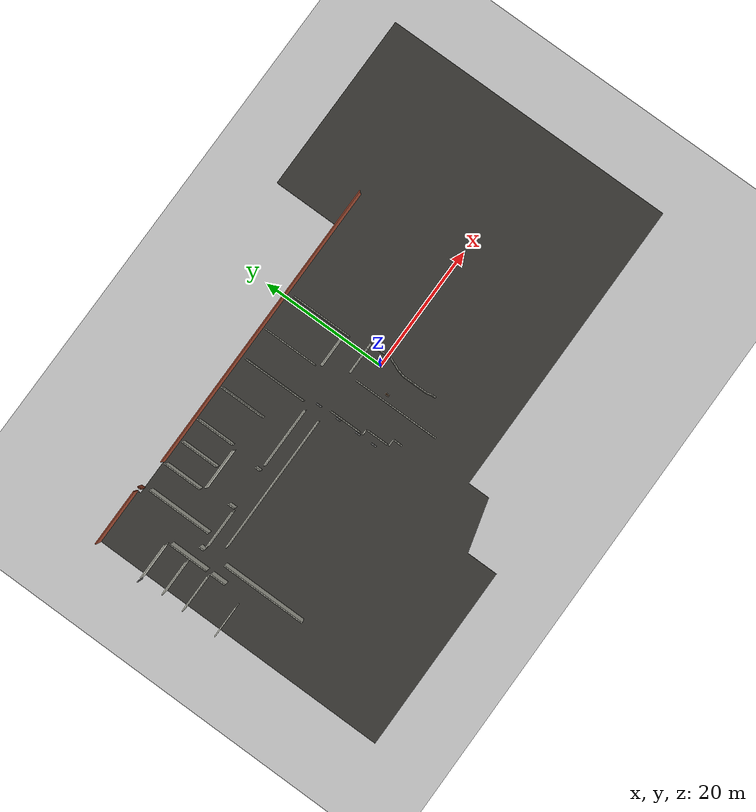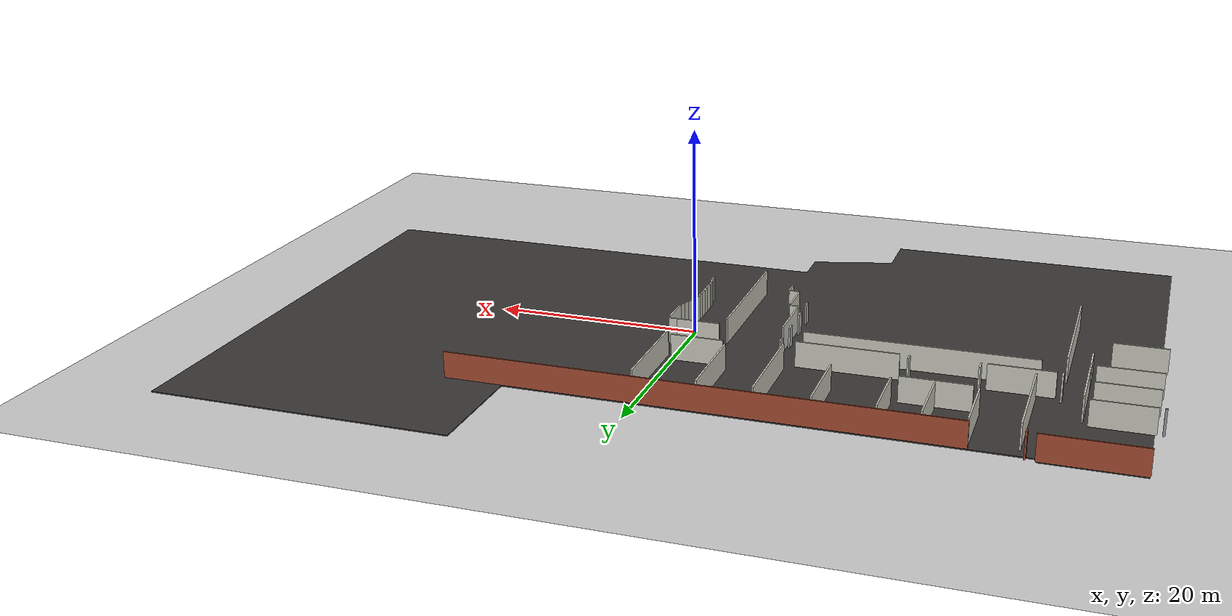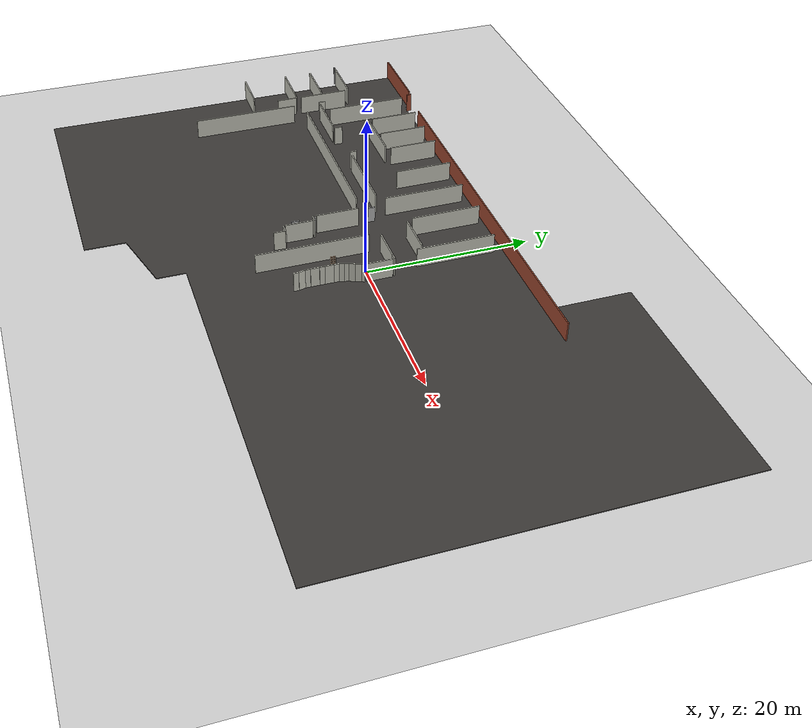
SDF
<sdf version="1.7">
 <world name="default">
  <model name="ground_plane">
   <static>1</static>
   <link name="link">
    <collision name="collision">
     <geometry><plane><normal>0 0 1</normal><size>100 100</size></plane></geometry>
     <surface><friction><ode><mu>100</mu><mu2>50</mu2></ode></friction></surface>
    </collision>
    <visual name="visual">
     <cast_shadows>0</cast_shadows>
     <geometry><plane><normal>0 0 1</normal><size>100 100</size></plane></geometry>
     <material>
      <ambient>1 1 1 1</ambient>
      <diffuse>0.8 0.8 0.8 1</diffuse>
      <specular>0.01 0.01 0.01 1</specular>
     </material>
    </visual>
   </link>
  </model>
  <model name="floorPlan">
   <pose>6.7155 -5.3556 0 0 -0 0</pose>
   <link name="Wall_101">
    <collision name="Wall_101_Collision">
     <geometry><box><size>8.95 0.15 2.5</size></box></geometry>
     <pose>0 0 1.25 0 -0 0</pose>
    </collision>
    <visual name="Wall_101_Visual">
     <pose>0 0 1.25 0 -0 0</pose>
     <geometry><box><size>8.95 0.15 2.5</size></box></geometry>
     <material>
      <script><uri>file://media/materials/scripts/gazebo.material</uri><name>Gazebo/Bricks</name></script>
      <ambient>1 1 1 1</ambient>
     </material>
     <meta><layer>0</layer></meta>
    </visual>
    <pose>-45.3755 22.7356 0 0 -0 0</pose>
   </link>
   <link name="Wall_102">
    <collision name="Wall_102_Collision">
     <geometry><box><size>0.62 0.15 2.5</size></box></geometry>
     <pose>0 0 1.25 0 -0 0</pose>
    </collision>
    <visual name="Wall_102_Visual">
     <pose>0 0 1.25 0 -0 0</pose>
     <geometry><box><size>0.62 0.15 2.5</size></box></geometry>
     <material>
      <script><uri>file://media/materials/scripts/gazebo.material</uri><name>Gazebo/Bricks</name></script>
      <ambient>1 1 1 1</ambient>
     </material>
     <meta><layer>0</layer></meta>
    </visual>
    <pose>-40.0755 22.4356 0 0 0 -1.5708</pose>
   </link>
   <link name="Wall_103">
    <collision name="Wall_103_Collision">
     <geometry><box><size>46.86 0.15 2.5</size></box></geometry>
     <pose>0 0 1.25 0 -0 0</pose>
    </collision>
    <visual name="Wall_103_Visual">
     <pose>0 0 1.25 0 -0 0</pose>
     <geometry><box><size>46.86 0.15 2.5</size></box></geometry>
     <material>
      <script><uri>file://media/materials/scripts/gazebo.material</uri><name>Gazebo/Bricks</name></script>
      <ambient>1 1 1 1</ambient>
     </material>
     <meta><layer>0</layer></meta>
    </visual>
    <pose>-12.0255 22.1356 0 0 -0 0</pose>
   </link>
   <link name="Wall_161">
    <collision name="Wall_161_Collision">
     <geometry><box><size>4.17 0.15 2.5</size></box></geometry>
     <pose>0 0 1.25 0 -0 0</pose>
    </collision>
    <visual name="Wall_161_Visual">
     <pose>0 0 1.25 0 -0 0</pose>
     <geometry><box><size>4.17 0.15 2.5</size></box></geometry>
     <material>
      <script><uri>file://media/materials/scripts/gazebo.material</uri><name>Gazebo/PaintedWall</name></script>
      <ambient>1 1 1 1</ambient>
     </material>
     <meta><layer>0</layer></meta>
    </visual>
    <pose>-7.97942 8.30014 0 0 -0 3.14159</pose>
   </link>
   <link name="Wall_162">
    <collision name="Wall_162_Collision">
     <geometry><box><size>13.74 0.15 2.5</size></box></geometry>
     <pose>0 0 1.25 0 -0 0</pose>
    </collision>
    <visual name="Wall_162_Visual">
     <pose>0 0 1.25 0 -0 0</pose>
     <geometry><box><size>13.74 0.15 2.5</size></box></geometry>
     <material>
      <script><uri>file://media/materials/scripts/gazebo.material</uri><name>Gazebo/PaintedWall</name></script>
      <ambient>1 1 1 1</ambient>
     </material>
     <meta><layer>0</layer></meta>
    </visual>
    <pose>-10.4044 0.125141 0 0 0 -1.5708</pose>
   </link>
   <link name="Wall_167">
    <collision name="Wall_167_Collision">
     <geometry><box><size>0.62 0.15 2.5</size></box></geometry>
     <pose>0 0 1.25 0 -0 0</pose>
    </collision>
    <visual name="Wall_167_Visual">
     <pose>0 0 1.25 0 -0 0</pose>
     <geometry><box><size>0.62 0.15 2.5</size></box></geometry>
     <material>
      <script><uri>file://media/materials/scripts/gazebo.material</uri><name>Gazebo/PaintedWall</name></script>
      <ambient>1 1 1 1</ambient>
     </material>
     <meta><layer>0</layer></meta>
    </visual>
    <pose>-5.82 -3.14265 0 0 -0 1.5708</pose>
   </link>
   <link name="Wall_168">
    <collision name="Wall_168_Collision">
     <geometry><box><size>0.83 0.15 2.5</size></box></geometry>
     <pose>0 0 1.25 0 -0 0</pose>
    </collision>
    <visual name="Wall_168_Visual">
     <pose>0 0 1.25 0 -0 0</pose>
     <geometry><box><size>0.83 0.15 2.5</size></box></geometry>
     <material>
      <script><uri>file://media/materials/scripts/gazebo.material</uri><name>Gazebo/PaintedWall</name></script>
      <ambient>1 1 1 1</ambient>
     </material>
     <meta><layer>0</layer></meta>
    </visual>
    <pose>-5.93 -2.43213 0 0 -0 1.8326</pose>
   </link>
   <link name="Wall_169">
    <collision name="Wall_169_Collision">
     <geometry><box><size>0.62 0.15 2.5</size></box></geometry>
     <pose>0 0 1.25 0 -0 0</pose>
    </collision>
    <visual name="Wall_169_Visual">
     <pose>0 0 1.25 0 -0 0</pose>
     <geometry><box><size>0.62 0.15 2.5</size></box></geometry>
     <material>
      <script><uri>file://media/materials/scripts/gazebo.material</uri><name>Gazebo/PaintedWall</name></script>
      <ambient>1 1 1 1</ambient>
     </material>
     <meta><layer>0</layer></meta>
    </visual>
    <pose>-6.04 -1.72161 0 0 -0 1.5708</pose>
   </link>
   <link name="Wall_170">
    <collision name="Wall_170_Collision">
     <geometry><box><size>1.04 0.15 2.5</size></box></geometry>
     <pose>0 0 1.25 0 -0 0</pose>
    </collision>
    <visual name="Wall_170_Visual">
     <pose>0 0 1.25 0 -0 0</pose>
     <geometry><box><size>1.04 0.15 2.5</size></box></geometry>
     <material>
      <script><uri>file://media/materials/scripts/gazebo.material</uri><name>Gazebo/PaintedWall</name></script>
      <ambient>1 1 1 1</ambient>
     </material>
     <meta><layer>0</layer></meta>
    </visual>
    <pose>-6.04 -0.871614 0 0 -0 1.5708</pose>
   </link>
   <link name="Wall_171">
    <collision name="Wall_171_Collision">
     <geometry><box><size>0.62 0.15 2.5</size></box></geometry>
     <pose>0 0 1.25 0 -0 0</pose>
    </collision>
    <visual name="Wall_171_Visual">
     <pose>0 0 1.25 0 -0 0</pose>
     <geometry><box><size>0.62 0.15 2.5</size></box></geometry>
     <material>
      <script><uri>file://media/materials/scripts/gazebo.material</uri><name>Gazebo/PaintedWall</name></script>
      <ambient>1 1 1 1</ambient>
     </material>
     <meta><layer>0</layer></meta>
    </visual>
    <pose>-6.04 -0.021614 0 0 -0 1.5708</pose>
   </link>
   <link name="Wall_172">
    <collision name="Wall_172_Collision">
     <geometry><box><size>1.04 0.15 2.5</size></box></geometry>
     <pose>0 0 1.25 0 -0 0</pose>
    </collision>
    <visual name="Wall_172_Visual">
     <pose>0 0 1.25 0 -0 0</pose>
     <geometry><box><size>1.04 0.15 2.5</size></box></geometry>
     <material>
      <script><uri>file://media/materials/scripts/gazebo.material</uri><name>Gazebo/PaintedWall</name></script>
      <ambient>1 1 1 1</ambient>
     </material>
     <meta><layer>0</layer></meta>
    </visual>
    <pose>-6.04 0.828386 0 0 -0 1.5708</pose>
   </link>
   <link name="Wall_173">
    <collision name="Wall_173_Collision">
     <geometry><box><size>0.62 0.15 2.5</size></box></geometry>
     <pose>0 0 1.25 0 -0 0</pose>
    </collision>
    <visual name="Wall_173_Visual">
     <pose>0 0 1.25 0 -0 0</pose>
     <geometry><box><size>0.62 0.15 2.5</size></box></geometry>
     <material>
      <script><uri>file://media/materials/scripts/gazebo.material</uri><name>Gazebo/PaintedWall</name></script>
      <ambient>1 1 1 1</ambient>
     </material>
     <meta><layer>0</layer></meta>
    </visual>
    <pose>-6.04 1.67839 0 0 -0 1.5708</pose>
   </link>
   <link name="Wall_174">
    <collision name="Wall_174_Collision">
     <geometry><box><size>0.62 0.15 2.5</size></box></geometry>
     <pose>0 0 1.25 0 -0 0</pose>
    </collision>
    <visual name="Wall_174_Visual">
     <pose>0 0 1.25 0 -0 0</pose>
     <geometry><box><size>0.62 0.15 2.5</size></box></geometry>
     <material>
      <script><uri>file://media/materials/scripts/gazebo.material</uri><name>Gazebo/PaintedWall</name></script>
      <ambient>1 1 1 1</ambient>
     </material>
     <meta><layer>0</layer></meta>
    </visual>
    <pose>-5.96235 2.26816 0 0 -0 1.309</pose>
   </link>
   <link name="Wall_175">
    <collision name="Wall_175_Collision">
     <geometry><box><size>0.57 0.15 2.5</size></box></geometry>
     <pose>0 0 1.25 0 -0 0</pose>
    </collision>
    <visual name="Wall_175_Visual">
     <pose>0 0 1.25 0 -0 0</pose>
     <geometry><box><size>0.57 0.15 2.5</size></box></geometry>
     <material>
      <script><uri>file://media/materials/scripts/gazebo.material</uri><name>Gazebo/PaintedWall</name></script>
      <ambient>1 1 1 1</ambient>
     </material>
     <meta><layer>0</layer></meta>
    </visual>
    <pose>-5.82391 2.82035 0 0 -0 1.34312</pose>
   </link>
   <link name="Wall_176">
    <collision name="Wall_176_Collision">
     <geometry><box><size>0.73 0.15 2.5</size></box></geometry>
     <pose>0 0 1.25 0 -0 0</pose>
    </collision>
    <visual name="Wall_176_Visual">
     <pose>0 0 1.25 0 -0 0</pose>
     <geometry><box><size>0.73 0.15 2.5</size></box></geometry>
     <material>
      <script><uri>file://media/materials/scripts/gazebo.material</uri><name>Gazebo/PaintedWall</name></script>
      <ambient>1 1 1 1</ambient>
     </material>
     <meta><layer>0</layer></meta>
    </visual>
    <pose>-5.60659 3.41318 0 0 -0 1.12842</pose>
   </link>
   <link name="Wall_177">
    <collision name="Wall_177_Collision">
     <geometry><box><size>0.7 0.15 2.5</size></box></geometry>
     <pose>0 0 1.25 0 -0 0</pose>
    </collision>
    <visual name="Wall_177_Visual">
     <pose>0 0 1.25 0 -0 0</pose>
     <geometry><box><size>0.7 0.15 2.5</size></box></geometry>
     <material>
      <script><uri>file://media/materials/scripts/gazebo.material</uri><name>Gazebo/PaintedWall</name></script>
      <ambient>1 1 1 1</ambient>
     </material>
     <meta><layer>0</layer></meta>
    </visual>
    <pose>-5.34572 4.07405 0 0 -0 1.26492</pose>
   </link>
   <link name="Wall_178">
    <collision name="Wall_178_Collision">
     <geometry><box><size>0.42 0.15 2.5</size></box></geometry>
     <pose>0 0 1.25 0 -0 0</pose>
    </collision>
    <visual name="Wall_178_Visual">
     <pose>0 0 1.25 0 -0 0</pose>
     <geometry><box><size>0.42 0.15 2.5</size></box></geometry>
     <material>
      <script><uri>file://media/materials/scripts/gazebo.material</uri><name>Gazebo/PaintedWall</name></script>
      <ambient>1 1 1 1</ambient>
     </material>
     <meta><layer>0</layer></meta>
    </visual>
    <pose>-5.15387 4.55604 0 0 -0 1.0472</pose>
   </link>
   <link name="Wall_179">
    <collision name="Wall_179_Collision">
     <geometry><box><size>3.12 0.15 2.5</size></box></geometry>
     <pose>0 0 1.25 0 -0 0</pose>
    </collision>
    <visual name="Wall_179_Visual">
     <pose>0 0 1.25 0 -0 0</pose>
     <geometry><box><size>3.12 0.15 2.5</size></box></geometry>
     <material>
      <script><uri>file://media/materials/scripts/gazebo.material</uri><name>Gazebo/PaintedWall</name></script>
      <ambient>1 1 1 1</ambient>
     </material>
     <meta><layer>0</layer></meta>
    </visual>
    <pose>-5.06637 6.5076 0 0 -0 1.5708</pose>
   </link>
   <link name="Wall_180">
    <collision name="Wall_180_Collision">
     <geometry><box><size>0.83 0.15 2.5</size></box></geometry>
     <pose>0 0 1.25 0 -0 0</pose>
    </collision>
    <visual name="Wall_180_Visual">
     <pose>0 0 1.25 0 -0 0</pose>
     <geometry><box><size>0.83 0.15 2.5</size></box></geometry>
     <material>
      <script><uri>file://media/materials/scripts/gazebo.material</uri><name>Gazebo/PaintedWall</name></script>
      <ambient>1 1 1 1</ambient>
     </material>
     <meta><layer>0</layer></meta>
    </visual>
    <pose>-5.49137 8.3076 0 0 -0 3.14159</pose>
   </link>
   <link name="Wall_184">
    <collision name="Wall_184_Collision">
     <geometry><box><size>13.33 0.15 2.5</size></box></geometry>
     <pose>0 0 1.25 0 -0 0</pose>
    </collision>
    <visual name="Wall_184_Visual">
     <pose>0 0 1.25 0 -0 0</pose>
     <geometry><box><size>13.33 0.15 2.5</size></box></geometry>
     <material>
      <script><uri>file://media/materials/scripts/gazebo.material</uri><name>Gazebo/PaintedWall</name></script>
      <ambient>1 1 1 1</ambient>
     </material>
     <meta><layer>0</layer></meta>
    </visual>
    <pose>-41.7957 -0.087903 0 0 -0 1.5708</pose>
   </link>
   <link name="Wall_185">
    <collision name="Wall_185_Collision">
     <geometry><box><size>21.66 0.15 2.5</size></box></geometry>
     <pose>0 0 1.25 0 -0 0</pose>
    </collision>
    <visual name="Wall_185_Visual">
     <pose>0 0 1.25 0 -0 0</pose>
     <geometry><box><size>21.66 0.15 2.5</size></box></geometry>
     <material>
      <script><uri>file://media/materials/scripts/gazebo.material</uri><name>Gazebo/PaintedWall</name></script>
      <ambient>1 1 1 1</ambient>
     </material>
     <meta><layer>0</layer></meta>
    </visual>
    <pose>-28.8707 7.8371 0 0 -0 0</pose>
   </link>
   <link name="Wall_186">
    <collision name="Wall_186_Collision">
     <geometry><box><size>5.21 0.15 2.5</size></box></geometry>
     <pose>0 0 1.25 0 -0 0</pose>
    </collision>
    <visual name="Wall_186_Visual">
     <pose>0 0 1.25 0 -0 0</pose>
     <geometry><box><size>5.21 0.15 2.5</size></box></geometry>
     <material>
      <script><uri>file://media/materials/scripts/gazebo.material</uri><name>Gazebo/PaintedWall</name></script>
      <ambient>1 1 1 1</ambient>
     </material>
     <meta><layer>0</layer></meta>
    </visual>
    <pose>-15.9457 4.7871 0 0 0 -1.5708</pose>
   </link>
   <link name="Wall_187">
    <collision name="Wall_187_Collision">
     <geometry><box><size>0.83 0.15 2.5</size></box></geometry>
     <pose>0 0 1.25 0 -0 0</pose>
    </collision>
    <visual name="Wall_187_Visual">
     <pose>0 0 1.25 0 -0 0</pose>
     <geometry><box><size>0.83 0.15 2.5</size></box></geometry>
     <material>
      <script><uri>file://media/materials/scripts/gazebo.material</uri><name>Gazebo/PaintedWall</name></script>
      <ambient>1 1 1 1</ambient>
     </material>
     <meta><layer>0</layer></meta>
    </visual>
    <pose>-15.5207 1.7371 0 0 -0 0</pose>
   </link>
   <link name="Wall_188">
    <collision name="Wall_188_Collision">
     <geometry><box><size>3.33 0.15 2.5</size></box></geometry>
     <pose>0 0 1.25 0 -0 0</pose>
    </collision>
    <visual name="Wall_188_Visual">
     <pose>0 0 1.25 0 -0 0</pose>
     <geometry><box><size>3.33 0.15 2.5</size></box></geometry>
     <material>
      <script><uri>file://media/materials/scripts/gazebo.material</uri><name>Gazebo/PaintedWall</name></script>
      <ambient>1 1 1 1</ambient>
     </material>
     <meta><layer>0</layer></meta>
    </visual>
    <pose>-15.0957 -0.187903 0 0 0 -1.5708</pose>
   </link>
   <link name="Wall_189">
    <collision name="Wall_189_Collision">
     <geometry><box><size>1.04 0.15 2.5</size></box></geometry>
     <pose>0 0 1.25 0 -0 0</pose>
    </collision>
    <visual name="Wall_189_Visual">
     <pose>0 0 1.25 0 -0 0</pose>
     <geometry><box><size>1.04 0.15 2.5</size></box></geometry>
     <material>
      <script><uri>file://media/materials/scripts/gazebo.material</uri><name>Gazebo/PaintedWall</name></script>
      <ambient>1 1 1 1</ambient>
     </material>
     <meta><layer>0</layer></meta>
    </visual>
    <pose>-14.5457 -2.1129 0 0 -0 0</pose>
   </link>
   <link name="Wall_190">
    <collision name="Wall_190_Collision">
     <geometry><box><size>1.39 0.15 2.5</size></box></geometry>
     <pose>0 0 1.25 0 -0 0</pose>
    </collision>
    <visual name="Wall_190_Visual">
     <pose>0 0 1.25 0 -0 0</pose>
     <geometry><box><size>1.39 0.15 2.5</size></box></geometry>
     <material>
      <script><uri>file://media/materials/scripts/gazebo.material</uri><name>Gazebo/PaintedWall</name></script>
      <ambient>1 1 1 1</ambient>
     </material>
     <meta><layer>0</layer></meta>
    </visual>
    <pose>-14.0185 -2.8716 0 0 0 -1.60087</pose>
   </link>
   <link name="Wall_198">
    <collision name="Wall_198_Collision">
     <geometry><box><size>5 0.15 2.5</size></box></geometry>
     <pose>0 0 1.25 0 -0 0</pose>
    </collision>
    <visual name="Wall_198_Visual">
     <pose>0 0 1.25 0 -0 0</pose>
     <geometry><box><size>5 0.15 2.5</size></box></geometry>
     <material>
      <script><uri>file://media/materials/scripts/gazebo.material</uri><name>Gazebo/PaintedWall</name></script>
      <ambient>1 1 1 1</ambient>
     </material>
     <meta><layer>0</layer></meta>
    </visual>
    <pose>-47.8468 1.90014 0 0 -0 0</pose>
   </link>
   <link name="Wall_200">
    <collision name="Wall_200_Collision">
     <geometry><box><size>2.5 0.15 2.5</size></box></geometry>
     <pose>0 0 1.25 0 -0 0</pose>
    </collision>
    <visual name="Wall_200_Visual">
     <pose>0 0 1.25 0 -0 0</pose>
     <geometry><box><size>2.5 0.15 2.5</size></box></geometry>
     <material>
      <script><uri>file://media/materials/scripts/gazebo.material</uri><name>Gazebo/PaintedWall</name></script>
      <ambient>1 1 1 1</ambient>
     </material>
     <meta><layer>0</layer></meta>
    </visual>
    <pose>-43.8501 6.14253 0 0 -0 1.5708</pose>
   </link>
   <link name="Wall_201">
    <collision name="Wall_201_Collision">
     <geometry><box><size>5.83 0.15 2.5</size></box></geometry>
     <pose>0 0 1.25 0 -0 0</pose>
    </collision>
    <visual name="Wall_201_Visual">
     <pose>0 0 1.25 0 -0 0</pose>
     <geometry><box><size>5.83 0.15 2.5</size></box></geometry>
     <material>
      <script><uri>file://media/materials/scripts/gazebo.material</uri><name>Gazebo/PaintedWall</name></script>
      <ambient>1 1 1 1</ambient>
     </material>
     <meta><layer>0</layer></meta>
    </visual>
    <pose>-47.2751 7.56753 0 0 -0 3.14159</pose>
   </link>
   <link name="Wall_204">
    <collision name="Wall_204_Collision">
     <geometry><box><size>6.25 0.15 2.5</size></box></geometry>
     <pose>0 0 1.25 0 -0 0</pose>
    </collision>
    <visual name="Wall_204_Visual">
     <pose>0 0 1.25 0 -0 0</pose>
     <geometry><box><size>6.25 0.15 2.5</size></box></geometry>
     <material>
      <script><uri>file://media/materials/scripts/gazebo.material</uri><name>Gazebo/PaintedWall</name></script>
      <ambient>1 1 1 1</ambient>
     </material>
     <meta><layer>0</layer></meta>
    </visual>
    <pose>-43.8501 11.2425 0 0 -0 1.5708</pose>
   </link>
   <link name="Wall_205">
    <collision name="Wall_205_Collision">
     <geometry><box><size>5.62 0.15 2.5</size></box></geometry>
     <pose>0 0 1.25 0 -0 0</pose>
    </collision>
    <visual name="Wall_205_Visual">
     <pose>0 0 1.25 0 -0 0</pose>
     <geometry><box><size>5.62 0.15 2.5</size></box></geometry>
     <material>
      <script><uri>file://media/materials/scripts/gazebo.material</uri><name>Gazebo/PaintedWall</name></script>
      <ambient>1 1 1 1</ambient>
     </material>
     <meta><layer>0</layer></meta>
    </visual>
    <pose>-47.1501 14.9175 0 0 -0 3.14159</pose>
   </link>
   <link name="Wall_207">
    <collision name="Wall_207_Collision">
     <geometry><box><size>0.21 0.15 2.5</size></box></geometry>
     <pose>0 0 1.25 0 -0 0</pose>
    </collision>
    <visual name="Wall_207_Visual">
     <pose>0 0 1.25 0 -0 0</pose>
     <geometry><box><size>0.21 0.15 2.5</size></box></geometry>
     <material>
      <script><uri>file://media/materials/scripts/gazebo.material</uri><name>Gazebo/Grey</name></script>
      <ambient>1 1 1 1</ambient>
     </material>
     <meta><layer>0</layer></meta>
    </visual>
    <pose>-50.5001 14.9175 0 0 -0 3.14159</pose>
   </link>
   <link name="Wall_209">
    <collision name="Wall_209_Collision">
     <geometry><box><size>6.04 0.15 2.5</size></box></geometry>
     <pose>0 0 1.25 0 -0 0</pose>
    </collision>
    <visual name="Wall_209_Visual">
     <pose>0 0 1.25 0 -0 0</pose>
     <geometry><box><size>6.04 0.15 2.5</size></box></geometry>
     <material>
      <script><uri>file://media/materials/scripts/gazebo.material</uri><name>Gazebo/PaintedWall</name></script>
      <ambient>1 1 1 1</ambient>
     </material>
     <meta><layer>0</layer></meta>
    </visual>
    <pose>-38.2131 10.0741 0 0 -0 0</pose>
   </link>
   <link name="Wall_210">
    <collision name="Wall_210_Collision">
     <geometry><box><size>1.04 0.15 2.5</size></box></geometry>
     <pose>0 0 1.25 0 -0 0</pose>
    </collision>
    <visual name="Wall_210_Visual">
     <pose>0 0 1.25 0 -0 0</pose>
     <geometry><box><size>1.04 0.15 2.5</size></box></geometry>
     <material>
      <script><uri>file://media/materials/scripts/gazebo.material</uri><name>Gazebo/PaintedWall</name></script>
      <ambient>1 1 1 1</ambient>
     </material>
     <meta><layer>0</layer></meta>
    </visual>
    <pose>-34.6631 10.6241 0 0 -0 1.5708</pose>
   </link>
   <link name="Wall_212">
    <collision name="Wall_212_Collision">
     <geometry><box><size>0.83 0.15 2.5</size></box></geometry>
     <pose>0 0 1.25 0 -0 0</pose>
    </collision>
    <visual name="Wall_212_Visual">
     <pose>0 0 1.25 0 -0 0</pose>
     <geometry><box><size>0.83 0.15 2.5</size></box></geometry>
     <material>
      <script><uri>file://media/materials/scripts/gazebo.material</uri><name>Gazebo/PaintedWall</name></script>
      <ambient>1 1 1 1</ambient>
     </material>
     <meta><layer>0</layer></meta>
    </visual>
    <pose>-41.7631 10.4991 0 0 -0 1.5708</pose>
   </link>
   <link name="Wall_214">
    <collision name="Wall_214_Collision">
     <geometry><box><size>10.2 0.15 2.5</size></box></geometry>
     <pose>0 0 1.25 0 -0 0</pose>
    </collision>
    <visual name="Wall_214_Visual">
     <pose>0 0 1.25 0 -0 0</pose>
     <geometry><box><size>10.2 0.15 2.5</size></box></geometry>
     <material>
      <script><uri>file://media/materials/scripts/gazebo.material</uri><name>Gazebo/PaintedWall</name></script>
      <ambient>1 1 1 1</ambient>
     </material>
     <meta><layer>0</layer></meta>
    </visual>
    <pose>-39.537 16.0936 0 0 0 -1.5708</pose>
   </link>
   <link name="Wall_216">
    <collision name="Wall_216_Collision">
     <geometry><box><size>6.04 0.15 2.5</size></box></geometry>
     <pose>0 0 1.25 0 -0 0</pose>
    </collision>
    <visual name="Wall_216_Visual">
     <pose>0 0 1.25 0 -0 0</pose>
     <geometry><box><size>6.04 0.15 2.5</size></box></geometry>
     <material>
      <script><uri>file://media/materials/scripts/gazebo.material</uri><name>Gazebo/PaintedWall</name></script>
      <ambient>1 1 1 1</ambient>
     </material>
     <meta><layer>0</layer></meta>
    </visual>
    <pose>-35.3283 18.5936 0 0 0 -1.5708</pose>
   </link>
   <link name="Wall_217">
    <collision name="Wall_217_Collision">
     <geometry><box><size>6.46 0.15 2.5</size></box></geometry>
     <pose>0 0 1.25 0 -0 0</pose>
    </collision>
    <visual name="Wall_217_Visual">
     <pose>0 0 1.25 0 -0 0</pose>
     <geometry><box><size>6.46 0.15 2.5</size></box></geometry>
     <material>
      <script><uri>file://media/materials/scripts/gazebo.material</uri><name>Gazebo/PaintedWall</name></script>
      <ambient>1 1 1 1</ambient>
     </material>
     <meta><layer>0</layer></meta>
    </visual>
    <pose>-31.5283 15.0436 0 0 -0 0</pose>
   </link>
   <link name="Wall_218">
    <collision name="Wall_218_Collision">
     <geometry><box><size>6.04 0.15 2.5</size></box></geometry>
     <pose>0 0 1.25 0 -0 0</pose>
    </collision>
    <visual name="Wall_218_Visual">
     <pose>0 0 1.25 0 -0 0</pose>
     <geometry><box><size>6.04 0.15 2.5</size></box></geometry>
     <material>
      <script><uri>file://media/materials/scripts/gazebo.material</uri><name>Gazebo/PaintedWall</name></script>
      <ambient>1 1 1 1</ambient>
     </material>
     <meta><layer>0</layer></meta>
    </visual>
    <pose>-27.7283 18.5936 0 0 -0 1.5708</pose>
   </link>
   <link name="Wall_220">
    <collision name="Wall_220_Collision">
     <geometry><box><size>0.83 0.15 2.5</size></box></geometry>
     <pose>0 0 1.25 0 -0 0</pose>
    </collision>
    <visual name="Wall_220_Visual">
     <pose>0 0 1.25 0 -0 0</pose>
     <geometry><box><size>0.83 0.15 2.5</size></box></geometry>
     <material>
      <script><uri>file://media/materials/scripts/gazebo.material</uri><name>Gazebo/PaintedWall</name></script>
      <ambient>1 1 1 1</ambient>
     </material>
     <meta><layer>0</layer></meta>
    </visual>
    <pose>-28.3718 10.7273 0 0 0 -1.5708</pose>
   </link>
   <link name="Wall_221">
    <collision name="Wall_221_Collision">
     <geometry><box><size>9.58 0.15 2.5</size></box></geometry>
     <pose>0 0 1.25 0 -0 0</pose>
    </collision>
    <visual name="Wall_221_Visual">
     <pose>0 0 1.25 0 -0 0</pose>
     <geometry><box><size>9.58 0.15 2.5</size></box></geometry>
     <material>
      <script><uri>file://media/materials/scripts/gazebo.material</uri><name>Gazebo/PaintedWall</name></script>
      <ambient>1 1 1 1</ambient>
     </material>
     <meta><layer>0</layer></meta>
    </visual>
    <pose>-22.6968 10.3023 0 0 -0 0</pose>
   </link>
   <link name="Wall_222">
    <collision name="Wall_222_Collision">
     <geometry><box><size>10 0.15 2.5</size></box></geometry>
     <pose>0 0 1.25 0 -0 0</pose>
    </collision>
    <visual name="Wall_222_Visual">
     <pose>0 0 1.25 0 -0 0</pose>
     <geometry><box><size>10 0.15 2.5</size></box></geometry>
     <material>
      <script><uri>file://media/materials/scripts/gazebo.material</uri><name>Gazebo/PaintedWall</name></script>
      <ambient>1 1 1 1</ambient>
     </material>
     <meta><layer>0</layer></meta>
    </visual>
    <pose>-17.0218 16.2273 0 0 -0 1.5708</pose>
   </link>
   <link name="Wall_224">
    <collision name="Wall_224_Collision">
     <geometry><box><size>7.08 0.15 2.5</size></box></geometry>
     <pose>0 0 1.25 0 -0 0</pose>
    </collision>
    <visual name="Wall_224_Visual">
     <pose>0 0 1.25 0 -0 0</pose>
     <geometry><box><size>7.08 0.15 2.5</size></box></geometry>
     <material>
      <script><uri>file://media/materials/scripts/gazebo.material</uri><name>Gazebo/PaintedWall</name></script>
      <ambient>1 1 1 1</ambient>
     </material>
     <meta><layer>0</layer></meta>
    </visual>
    <pose>-22.1805 18.0034 0 0 0 -1.5708</pose>
   </link>
   <link name="Wall_226">
    <collision name="Wall_226_Collision">
     <geometry><box><size>8.54 0.15 2.5</size></box></geometry>
     <pose>0 0 1.25 0 -0 0</pose>
    </collision>
    <visual name="Wall_226_Visual">
     <pose>0 0 1.25 0 -0 0</pose>
     <geometry><box><size>8.54 0.15 2.5</size></box></geometry>
     <material>
      <script><uri>file://media/materials/scripts/gazebo.material</uri><name>Gazebo/PaintedWall</name></script>
      <ambient>1 1 1 1</ambient>
     </material>
     <meta><layer>0</layer></meta>
    </visual>
    <pose>-12.024 17.1632 0 0 0 -1.5708</pose>
   </link>
   <link name="Wall_227">
    <collision name="Wall_227_Collision">
     <geometry><box><size>5 0.15 2.5</size></box></geometry>
     <pose>0 0 1.25 0 -0 0</pose>
    </collision>
    <visual name="Wall_227_Visual">
     <pose>0 0 1.25 0 -0 0</pose>
     <geometry><box><size>5 0.15 2.5</size></box></geometry>
     <material>
      <script><uri>file://media/materials/scripts/gazebo.material</uri><name>Gazebo/PaintedWall</name></script>
      <ambient>1 1 1 1</ambient>
     </material>
     <meta><layer>0</layer></meta>
    </visual>
    <pose>-9.09898 12.1132 0 0 -0 0</pose>
   </link>
   <link name="Wall_261">
    <collision name="Wall_261_Collision">
     <geometry><box><size>5.62 0.15 2.5</size></box></geometry>
     <pose>0 0 1.25 0 -0 0</pose>
    </collision>
    <visual name="Wall_261_Visual">
     <pose>0 0 1.25 0 -0 0</pose>
     <geometry><box><size>5.62 0.15 2.5</size></box></geometry>
     <material>
      <script><uri>file://media/materials/scripts/gazebo.material</uri><name>Gazebo/PaintedWall</name></script>
      <ambient>1 1 1 1</ambient>
     </material>
     <meta><layer>0</layer></meta>
    </visual>
    <pose>-47.2608 11.1677 0 0 -0 0</pose>
   </link>
   <link name="Wall_263">
    <collision name="Wall_263_Collision">
     <geometry><box><size>6.04 0.15 2.5</size></box></geometry>
     <pose>0 0 1.25 0 -0 0</pose>
    </collision>
    <visual name="Wall_263_Visual">
     <pose>0 0 1.25 0 -0 0</pose>
     <geometry><box><size>6.04 0.15 2.5</size></box></geometry>
     <material>
      <script><uri>file://media/materials/scripts/gazebo.material</uri><name>Gazebo/PaintedWall</name></script>
      <ambient>1 1 1 1</ambient>
     </material>
     <meta><layer>0</layer></meta>
    </visual>
    <pose>-31.4967 18.5315 0 0 0 -1.5708</pose>
   </link>
   <link name="Wall_36">
    <collision name="Wall_36_Collision">
     <geometry><box><size>9.58 0.15 2.5</size></box></geometry>
     <pose>0 0 1.25 0 -0 0</pose>
    </collision>
    <visual name="Wall_36_Visual">
     <pose>0 0 1.25 0 -0 0</pose>
     <geometry><box><size>9.58 0.15 2.5</size></box></geometry>
     <material>
      <script><uri>file://media/materials/scripts/gazebo.material</uri><name>Gazebo/PaintedWall</name></script>
      <ambient>1 1 1 1</ambient>
     </material>
     <meta><layer>0</layer></meta>
    </visual>
    <pose>-6.00935 16.1122 0 0 -0 1.5708</pose>
   </link>
   <static>1</static>
  </model>
  <model name="6_Cube_StorageE_clone_6">
   <link name="Wall_0">
    <pose>0 0 0.01 0 -0 0</pose>
    <inertial>
     <mass>1.6201</mass>
     <inertia><ixx>0.0119</ixx><iyy>0.0631</iyy><izz>0.0513</izz><ixy>0</ixy><ixz>0</ixz><iyz>0</iyz></inertia>
    </inertial>
    <collision name="Wall_0_Collision"><geometry><box><size>0.616 0.296 0.02</size></box></geometry></collision>
    <visual name="Wall_0_Visual">
     <geometry><box><size>0.616 0.296 0.02</size></box></geometry>
     <material>
      <script><uri>file://media/materials/scripts/gazebo.material</uri><name>Gazebo/Grey</name></script>
      <ambient>0.105882 0.0509804 0 1</ambient>
     </material>
    </visual>
   </link>
   <joint name="0_2" type="fixed">
    <pose>-0.308 0 0 0 -0 0</pose>
    <parent>Wall_2</parent>
    <child>Wall_0</child>
    <axis><xyz>1 0 0</xyz><limit><lower>-1e+16</lower><upper>1e+16</upper></limit></axis>
   </joint>
   <joint name="0_12" type="fixed">
    <parent>Wall_12</parent>
    <child>Wall_0</child>
    <axis><xyz>0 0 1</xyz><limit><lower>-1e+16</lower><upper>1e+16</upper></limit></axis>
   </joint>
   <joint name="0_4" type="fixed">
    <pose>0.308 0 0 0 -0 0</pose>
    <parent>Wall_4</parent>
    <child>Wall_0</child>
    <axis><xyz>1 0 0</xyz><limit><lower>-1e+16</lower><upper>1e+16</upper></limit></axis>
   </joint>
   <link name="Wall_10">
    <pose>0 0 0.61 0 -0 0</pose>
    <inertial>
     <mass>1.6201</mass>
     <inertia><ixx>0.0119</ixx><iyy>0.0631</iyy><izz>0.0513</izz><ixy>0</ixy><ixz>0</ixz><iyz>0</iyz></inertia>
    </inertial>
    <collision name="Wall_10_Collision"><geometry><box><size>0.616 0.296 0.02</size></box></geometry></collision>
    <visual name="Wall_10_Visual">
     <geometry><box><size>0.616 0.296 0.02</size></box></geometry>
     <material>
      <script><uri>file://media/materials/scripts/gazebo.material</uri><name>Gazebo/Grey</name></script>
      <ambient>0.105882 0.0509804 0 1</ambient>
     </material>
    </visual>
   </link>
   <joint name="10_2" type="fixed">
    <pose>-0.308 0 0 0 -0 0</pose>
    <parent>Wall_2</parent>
    <child>Wall_10</child>
    <axis><xyz>1 0 0</xyz><limit><lower>-1e+16</lower><upper>1e+16</upper></limit></axis>
   </joint>
   <joint name="10_12" type="fixed">
    <parent>Wall_12</parent>
    <child>Wall_10</child>
    <axis><xyz>0 0 1</xyz><limit><lower>-1e+16</lower><upper>1e+16</upper></limit></axis>
   </joint>
   <joint name="10_4" type="fixed">
    <pose>0.308 0 0 0 -0 0</pose>
    <parent>Wall_4</parent>
    <child>Wall_10</child>
    <axis><xyz>1 0 0</xyz><limit><lower>-1e+16</lower><upper>1e+16</upper></limit></axis>
   </joint>
   <link name="Wall_12">
    <pose>0 0 0.4575 0 -0 0</pose>
    <inertial>
     <mass>2.4065</mass>
     <inertia><ixx>0.0177</ixx><iyy>0.1855</iyy><izz>0.168</izz><ixy>0</ixy><ixz>0</ixz><iyz>0</iyz></inertia>
    </inertial>
    <collision name="Wall_12_Collision"><geometry><box><size>0.02 0.296 0.915</size></box></geometry></collision>
    <visual name="Wall_12_Visual">
     <geometry><box><size>0.02 0.296 0.915</size></box></geometry>
     <material>
      <script><uri>file://media/materials/scripts/gazebo.material</uri><name>Gazebo/Grey</name></script>
      <ambient>0.105882 0.0509804 0 1</ambient>
     </material>
    </visual>
   </link>
   <link name="Wall_2">
    <pose>-0.298 0 0.4575 0 -0 0</pose>
    <inertial>
     <mass>2.4065</mass>
     <inertia><ixx>0.0177</ixx><iyy>0.1855</iyy><izz>0.168</izz><ixy>0</ixy><ixz>0</ixz><iyz>0</iyz></inertia>
    </inertial>
    <collision name="Wall_2_Collision"><geometry><box><size>0.02 0.296 0.915</size></box></geometry></collision>
    <visual name="Wall_2_Visual">
     <geometry><box><size>0.02 0.296 0.915</size></box></geometry>
     <material>
      <script><uri>file://media/materials/scripts/gazebo.material</uri><name>Gazebo/Grey</name></script>
      <ambient>0.105882 0.0509804 0 1</ambient>
     </material>
    </visual>
   </link>
   <link name="Wall_4">
    <pose>0.298 0 0.4575 0 -0 0</pose>
    <inertial>
     <mass>2.4065</mass>
     <inertia><ixx>0.0177</ixx><iyy>0.1855</iyy><izz>0.168</izz><ixy>0</ixy><ixz>0</ixz><iyz>0</iyz></inertia>
    </inertial>
    <collision name="Wall_4_Collision"><geometry><box><size>0.02 0.296 0.915</size></box></geometry></collision>
    <visual name="Wall_4_Visual">
     <geometry><box><size>0.02 0.296 0.915</size></box></geometry>
     <material>
      <script><uri>file://media/materials/scripts/gazebo.material</uri><name>Gazebo/Grey</name></script>
      <ambient>0.105882 0.0509804 0 1</ambient>
     </material>
    </visual>
   </link>
   <link name="Wall_6">
    <pose>0 0 0.905 0 -0 0</pose>
    <inertial>
     <mass>1.6201</mass>
     <inertia><ixx>0.0119</ixx><iyy>0.0631</iyy><izz>0.0513</izz><ixy>0</ixy><ixz>0</ixz><iyz>0</iyz></inertia>
    </inertial>
    <collision name="Wall_6_Collision"><geometry><box><size>0.616 0.296 0.02</size></box></geometry></collision>
    <visual name="Wall_6_Visual">
     <geometry><box><size>0.616 0.296 0.02</size></box></geometry>
     <material>
      <script><uri>file://media/materials/scripts/gazebo.material</uri><name>Gazebo/Grey</name></script>
      <ambient>0.105882 0.0509804 0 1</ambient>
     </material>
    </visual>
   </link>
   <joint name="6_2" type="fixed">
    <pose>-0.308 0 0 0 -0 0</pose>
    <parent>Wall_2</parent>
    <child>Wall_6</child>
    <axis><xyz>2 0 0</xyz><limit><lower>-1e+16</lower><upper>1e+16</upper></limit></axis>
   </joint>
   <joint name="6_12" type="fixed">
    <parent>Wall_12</parent>
    <child>Wall_6</child>
    <axis><xyz>0 0 1</xyz><limit><lower>-1e+16</lower><upper>1e+16</upper></limit></axis>
   </joint>
   <joint name="6_4" type="fixed">
    <pose>0.308 0 0 0 -0 0</pose>
    <parent>Wall_4</parent>
    <child>Wall_6</child>
    <axis><xyz>1 0 0</xyz><limit><lower>-1e+16</lower><upper>1e+16</upper></limit></axis>
   </joint>
   <link name="Wall_8">
    <pose>0 0 0.305 0 -0 0</pose>
    <inertial>
     <mass>1.6201</mass>
     <inertia><ixx>0.0119</ixx><iyy>0.0631</iyy><izz>0.0513</izz><ixy>0</ixy><ixz>0</ixz><iyz>0</iyz></inertia>
    </inertial>
    <collision name="Wall_8_Collision"><geometry><box><size>0.616 0.296 0.02</size></box></geometry></collision>
    <visual name="Wall_8_Visual">
     <geometry><box><size>0.616 0.296 0.02</size></box></geometry>
     <material>
      <script><uri>file://media/materials/scripts/gazebo.material</uri><name>Gazebo/Grey</name></script>
      <ambient>0.105882 0.0509804 0 1</ambient>
     </material>
    </visual>
   </link>
   <joint name="8_2" type="fixed">
    <pose>-0.308 0 0 0 -0 0</pose>
    <parent>Wall_2</parent>
    <child>Wall_8</child>
    <axis><xyz>1 0 0</xyz><limit><lower>-1e+16</lower><upper>1e+16</upper></limit></axis>
   </joint>
   <joint name="8_12" type="fixed">
    <parent>Wall_12</parent>
    <child>Wall_8</child>
    <axis><xyz>0 0 1</xyz><limit><lower>-1e+16</lower><upper>1e+16</upper></limit></axis>
   </joint>
   <joint name="8_4" type="fixed">
    <pose>0.308 0 0 0 -0 0</pose>
    <parent>Wall_4</parent>
    <child>Wall_8</child>
    <axis><xyz>1 0 0</xyz><limit><lower>-1e+16</lower><upper>1e+16</upper></limit></axis>
   </joint>
   <static>1</static>
   <pose>-2.73201 -3.08558 0 0 -0 1.57829</pose>
  </model>
  <model name="fourth_floor_floor">
   <pose>-0.736855 -1.42323 -0.199274 0 -0 0</pose>
   <link name="link_3">
    <visual name="visual">
     <geometry>
      <mesh><uri>model://fourth_floor_floor/meshes/fourth_floor_floor.stl</uri><scale>1 1 1</scale></mesh>
     </geometry>
     <material>
      <ambient>0.226563 0.21875 0.207031 1</ambient>
      <diffuse>0.226563 0.21875 0.207031 1</diffuse>
      <specular>0.1 0.1 0.1 1</specular>
      <emissive>0 0 0 0</emissive>
     </material>
    </visual>
   </link>
   <static>1</static>
  </model>
  <model name="door_clone_6">
   <link name="link_0">
    <visual name="visual">
     <pose>0 0 1 0 -0 0</pose>
     <geometry><box><size>0.9 0.15 2</size></box></geometry>
     <material>
      <script>
       <uri>model://door/materials/scripts</uri>
       <uri>model://door/materials/textures</uri>
       <name>door</name>
      </script>
     </material>
    </visual>
    <collision name="collision">
     <pose>0 0 1 0 -0 0</pose>
     <geometry><box><size>0.9 0.15 2</size></box></geometry>
    </collision>
   </link>
   <static>1</static>
   <pose>-9.54341 -5.69634 0 0 -0 1.56387</pose>
  </model>
  <model name="door_clone_7">
   <link name="link_0">
    <visual name="visual">
     <pose>0 0 1 0 -0 0</pose>
     <geometry><box><size>0.9 0.15 2</size></box></geometry>
     <material>
      <script>
       <uri>model://door/materials/scripts</uri>
       <uri>model://door/materials/textures</uri>
       <name>door</name>
      </script>
     </material>
    </visual>
    <collision name="collision">
     <pose>0 0 1 0 -0 0</pose>
     <geometry><box><size>0.9 0.15 2</size></box></geometry>
    </collision>
   </link>
   <static>1</static>
   <pose>-9.55575 -2.9426 0 0 -0 1.56387</pose>
  </model>
  <model name="door_clone_8">
   <link name="link_0">
    <visual name="visual">
     <pose>0 0 1 0 -0 0</pose>
     <geometry><box><size>0.9 0.15 2</size></box></geometry>
     <material>
      <script>
       <uri>model://door/materials/scripts</uri>
       <uri>model://door/materials/textures</uri>
       <name>door</name>
      </script>
     </material>
    </visual>
    <collision name="collision">
     <pose>0 0 1 0 -0 0</pose>
     <geometry><box><size>0.9 0.15 2</size></box></geometry>
    </collision>
   </link>
   <static>1</static>
   <pose>-9.55736 0.473069 0 0 -0 1.56387</pose>
  </model>
  <model name="door_clone_9">
   <link name="link_0">
    <visual name="visual">
     <pose>0 0 1 0 -0 0</pose>
     <geometry><box><size>0.9 0.15 2</size></box></geometry>
     <material>
      <script>
       <uri>model://door/materials/scripts</uri>
       <uri>model://door/materials/textures</uri>
       <name>door</name>
      </script>
     </material>
    </visual>
    <collision name="collision">
     <pose>0 0 1 0 -0 0</pose>
     <geometry><box><size>0.9 0.15 2</size></box></geometry>
    </collision>
   </link>
   <static>1</static>
   <pose>-9.54605 3.80445 0 0 -0 1.56387</pose>
  </model>
 </world>
</sdf>
